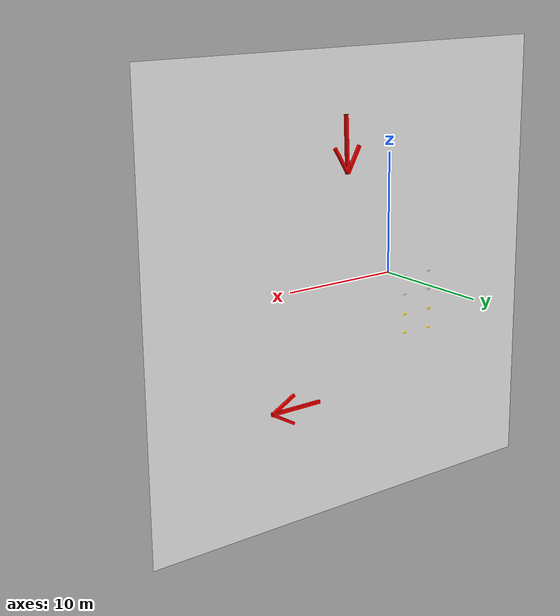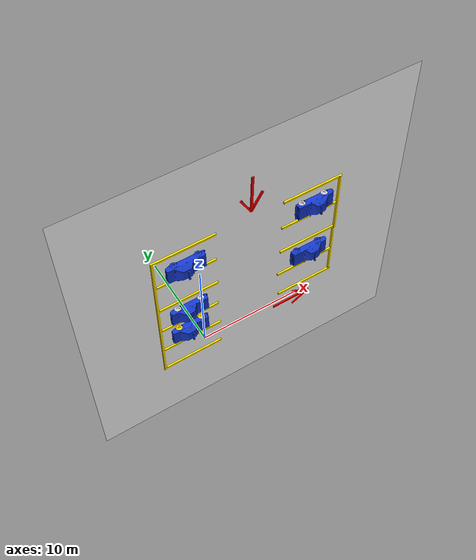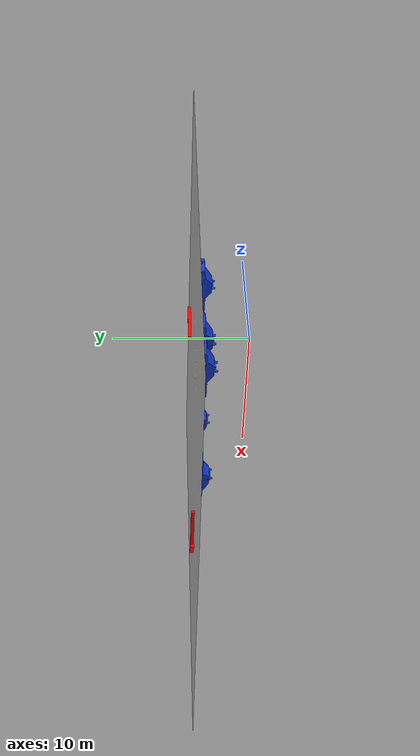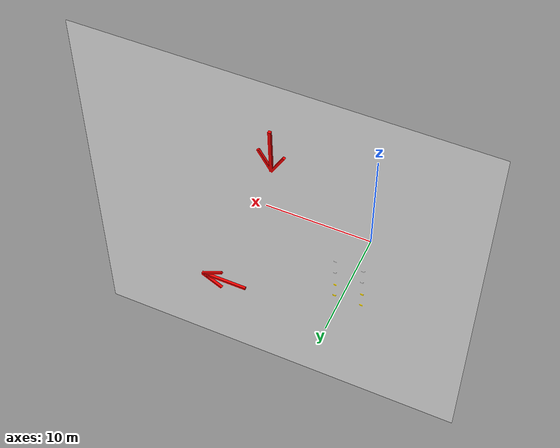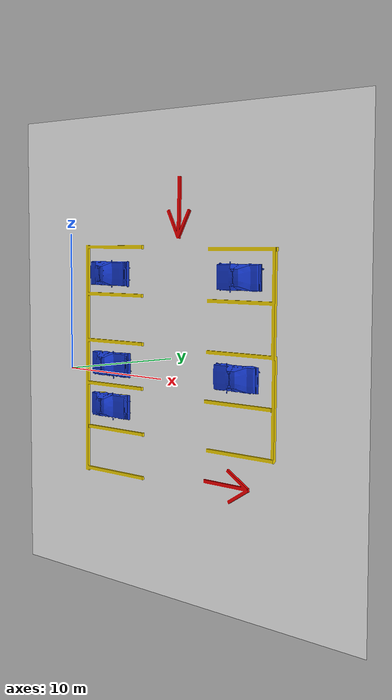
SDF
<?xml version ="1.0"?>
<sdf version="1.6">
  <model name="parking_space">
    <pose>-3.14159265359 4 0  1.57079632679 0 0</pose>
    <static>true</static>
    <link name="link">
      <collision name="colision1">
        <geometry>
          <mesh>
            <uri>model://parking_space/meshes/parking_space.dae</uri>
          </mesh>
        </geometry>
      </collision>

      <visual name="visual1">
        <cast_shadows>true</cast_shadows>
        <geometry>
          <mesh>
            <uri>model://parking_space/meshes/parking_space.dae</uri>
          </mesh>
        </geometry>
      </visual>

    </link>
  </model>
</sdf>
